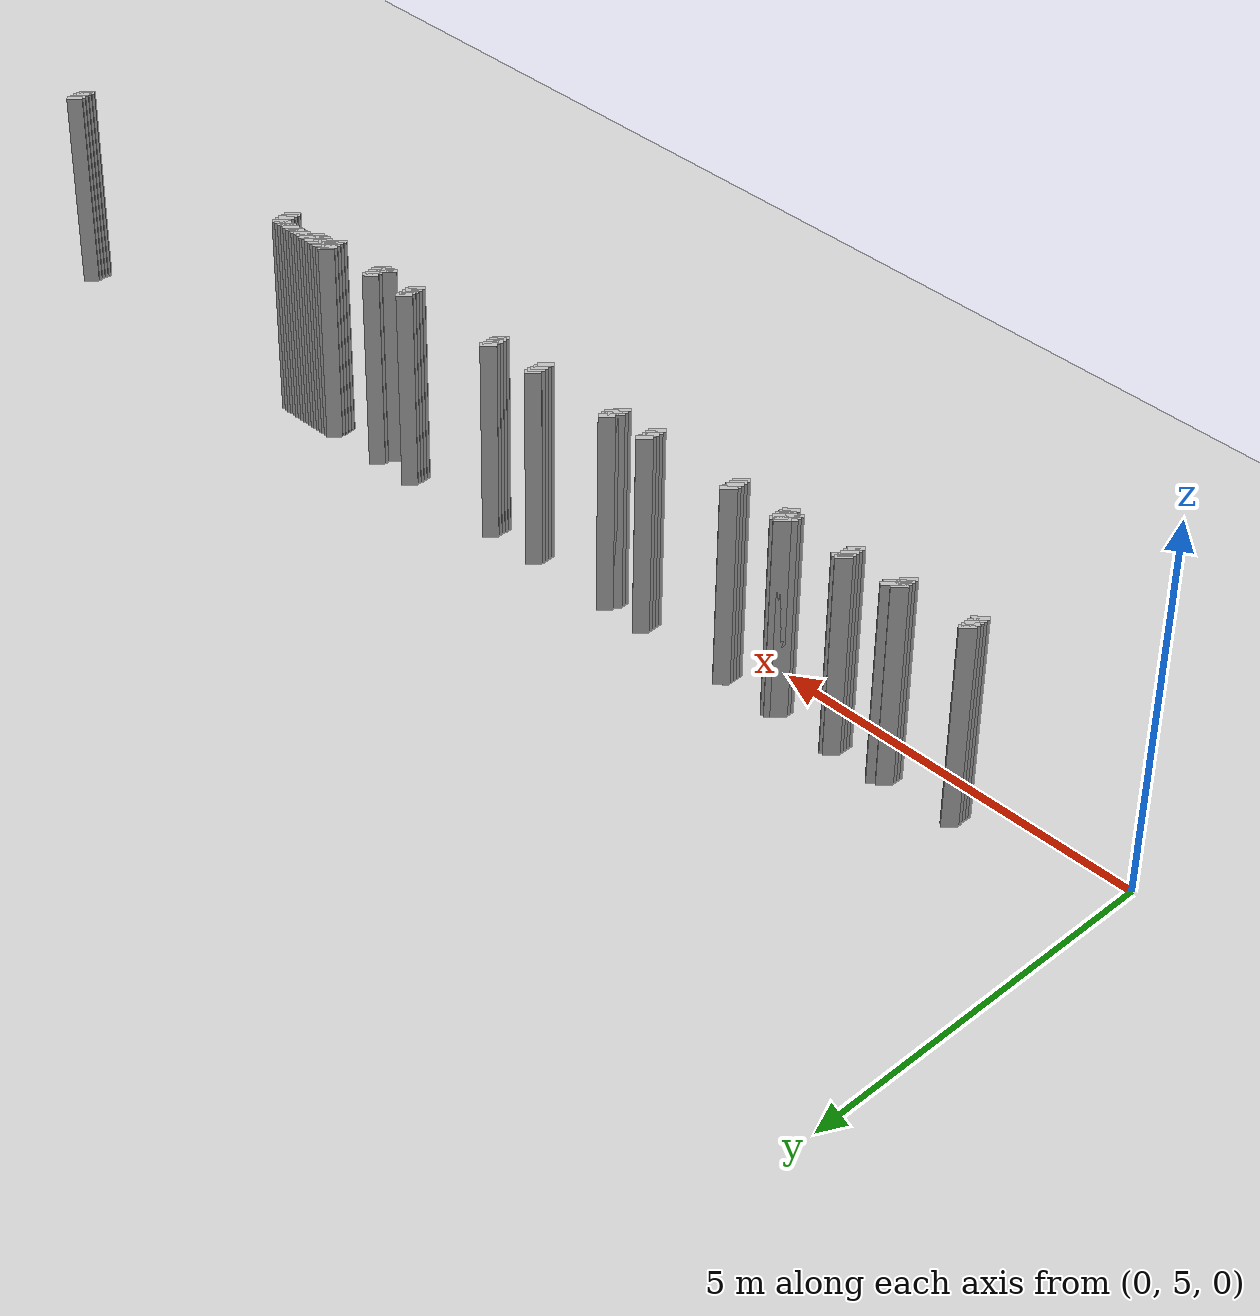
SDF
<sdf version="1.5">
 <world name="default">
  <include><uri>model://ground_plane</uri></include>
  <include><uri>model://sun</uri></include>
  <model name="grey_wall_2757">
   <static>1</static>
   <link name="link">
    <pose>3.1 5.65  1.4 0 0 -0.7853981633974572</pose>
    <collision name="collision">
     <geometry><box><size>0.07071067811865513 .2  2.8</size></box></geometry>
    </collision>
    <visual name="visual">
     <cast_shadows>0</cast_shadows>
     <geometry><box><size>0.07071067811865513 .2  2.8</size></box></geometry>
    </visual>
   </link>
  </model>
  <model name="grey_wall_2758">
   <static>1</static>
   <link name="link">
    <pose>3.75 5.65  1.4 0 0 -0.7853981633974572</pose>
    <collision name="collision">
     <geometry><box><size>0.07071067811865513 .2  2.8</size></box></geometry>
    </collision>
    <visual name="visual">
     <cast_shadows>0</cast_shadows>
     <geometry><box><size>0.07071067811865513 .2  2.8</size></box></geometry>
    </visual>
   </link>
  </model>
  <model name="grey_wall_2759">
   <static>1</static>
   <link name="link">
    <pose>3.8000000000000003 5.65  1.4 0 0 -0.7853981633974572</pose>
    <collision name="collision">
     <geometry><box><size>0.07071067811865513 .2  2.8</size></box></geometry>
    </collision>
    <visual name="visual">
     <cast_shadows>0</cast_shadows>
     <geometry><box><size>0.07071067811865513 .2  2.8</size></box></geometry>
    </visual>
   </link>
  </model>
  <model name="grey_wall_2760">
   <static>1</static>
   <link name="link">
    <pose>4.65 5.65  1.4 0 0 -0.7853981633974483</pose>
    <collision name="collision">
     <geometry><box><size>0.07071067811865576 .2  2.8</size></box></geometry>
    </collision>
    <visual name="visual">
     <cast_shadows>0</cast_shadows>
     <geometry><box><size>0.07071067811865576 .2  2.8</size></box></geometry>
    </visual>
   </link>
  </model>
  <model name="grey_wall_2761">
   <static>1</static>
   <link name="link">
    <pose>4.7 5.65  1.4 0 0 -0.7853981633974483</pose>
    <collision name="collision">
     <geometry><box><size>0.07071067811865576 .2  2.8</size></box></geometry>
    </collision>
    <visual name="visual">
     <cast_shadows>0</cast_shadows>
     <geometry><box><size>0.07071067811865576 .2  2.8</size></box></geometry>
    </visual>
   </link>
  </model>
  <model name="grey_wall_2762">
   <static>1</static>
   <link name="link">
    <pose>5.45 5.65  1.4 0 0 -0.7853981633974483</pose>
    <collision name="collision">
     <geometry><box><size>0.07071067811865576 .2  2.8</size></box></geometry>
    </collision>
    <visual name="visual">
     <cast_shadows>0</cast_shadows>
     <geometry><box><size>0.07071067811865576 .2  2.8</size></box></geometry>
    </visual>
   </link>
  </model>
  <model name="grey_wall_2763">
   <static>1</static>
   <link name="link">
    <pose>6.75 5.65  1.4 0 0 -0.7853981633974483</pose>
    <collision name="collision">
     <geometry><box><size>0.07071067811865576 .2  2.8</size></box></geometry>
    </collision>
    <visual name="visual">
     <cast_shadows>0</cast_shadows>
     <geometry><box><size>0.07071067811865576 .2  2.8</size></box></geometry>
    </visual>
   </link>
  </model>
  <model name="grey_wall_2764">
   <static>1</static>
   <link name="link">
    <pose>7.3500000000000005 5.65  1.4 0 0 -0.7853981633974483</pose>
    <collision name="collision">
     <geometry><box><size>0.07071067811865576 .2  2.8</size></box></geometry>
    </collision>
    <visual name="visual">
     <cast_shadows>0</cast_shadows>
     <geometry><box><size>0.07071067811865576 .2  2.8</size></box></geometry>
    </visual>
   </link>
  </model>
  <model name="grey_wall_2765">
   <static>1</static>
   <link name="link">
    <pose>8.55 5.65  1.4 0 0 -0.7853981633974483</pose>
    <collision name="collision">
     <geometry><box><size>0.07071067811865576 .2  2.8</size></box></geometry>
    </collision>
    <visual name="visual">
     <cast_shadows>0</cast_shadows>
     <geometry><box><size>0.07071067811865576 .2  2.8</size></box></geometry>
    </visual>
   </link>
  </model>
  <model name="grey_wall_2766">
   <static>1</static>
   <link name="link">
    <pose>9.3 5.65  1.4 0 0 -0.7853981633974483</pose>
    <collision name="collision">
     <geometry><box><size>0.07071067811865576 .2  2.8</size></box></geometry>
    </collision>
    <visual name="visual">
     <cast_shadows>0</cast_shadows>
     <geometry><box><size>0.07071067811865576 .2  2.8</size></box></geometry>
    </visual>
   </link>
  </model>
  <model name="grey_wall_2767">
   <static>1</static>
   <link name="link">
    <pose>10.75 5.65  1.4 0 0 -0.7853981633974483</pose>
    <collision name="collision">
     <geometry><box><size>0.07071067811865576 .2  2.8</size></box></geometry>
    </collision>
    <visual name="visual">
     <cast_shadows>0</cast_shadows>
     <geometry><box><size>0.07071067811865576 .2  2.8</size></box></geometry>
    </visual>
   </link>
  </model>
  <model name="grey_wall_2768">
   <static>1</static>
   <link name="link">
    <pose>11.350000000000001 5.65  1.4 0 0 -0.7853981633974483</pose>
    <collision name="collision">
     <geometry><box><size>0.07071067811865576 .2  2.8</size></box></geometry>
    </collision>
    <visual name="visual">
     <cast_shadows>0</cast_shadows>
     <geometry><box><size>0.07071067811865576 .2  2.8</size></box></geometry>
    </visual>
   </link>
  </model>
  <model name="grey_wall_2769">
   <static>1</static>
   <link name="link">
    <pose>12.15 5.65  1.4 0 0 -0.7853981633974483</pose>
    <collision name="collision">
     <geometry><box><size>0.07071067811865576 .2  2.8</size></box></geometry>
    </collision>
    <visual name="visual">
     <cast_shadows>0</cast_shadows>
     <geometry><box><size>0.07071067811865576 .2  2.8</size></box></geometry>
    </visual>
   </link>
  </model>
  <model name="grey_wall_2770">
   <static>1</static>
   <link name="link">
    <pose>12.200000000000001 5.65  1.4 0 0 -0.7853981633974483</pose>
    <collision name="collision">
     <geometry><box><size>0.07071067811865576 .2  2.8</size></box></geometry>
    </collision>
    <visual name="visual">
     <cast_shadows>0</cast_shadows>
     <geometry><box><size>0.07071067811865576 .2  2.8</size></box></geometry>
    </visual>
   </link>
  </model>
  <model name="grey_wall_2771">
   <static>1</static>
   <link name="link">
    <pose>12.25 5.65  1.4 0 0 -0.7853981633974483</pose>
    <collision name="collision">
     <geometry><box><size>0.07071067811865576 .2  2.8</size></box></geometry>
    </collision>
    <visual name="visual">
     <cast_shadows>0</cast_shadows>
     <geometry><box><size>0.07071067811865576 .2  2.8</size></box></geometry>
    </visual>
   </link>
  </model>
  <model name="grey_wall_2772">
   <static>1</static>
   <link name="link">
    <pose>12.3 5.65  1.4 0 0 -0.7853981633974483</pose>
    <collision name="collision">
     <geometry><box><size>0.07071067811865576 .2  2.8</size></box></geometry>
    </collision>
    <visual name="visual">
     <cast_shadows>0</cast_shadows>
     <geometry><box><size>0.07071067811865576 .2  2.8</size></box></geometry>
    </visual>
   </link>
  </model>
  <model name="grey_wall_2773">
   <static>1</static>
   <link name="link">
    <pose>12.350000000000001 5.65  1.4 0 0 -0.7853981633974483</pose>
    <collision name="collision">
     <geometry><box><size>0.07071067811865576 .2  2.8</size></box></geometry>
    </collision>
    <visual name="visual">
     <cast_shadows>0</cast_shadows>
     <geometry><box><size>0.07071067811865576 .2  2.8</size></box></geometry>
    </visual>
   </link>
  </model>
  <model name="grey_wall_2774">
   <static>1</static>
   <link name="link">
    <pose>12.4 5.65  1.4 0 0 -0.7853981633974483</pose>
    <collision name="collision">
     <geometry><box><size>0.07071067811865576 .2  2.8</size></box></geometry>
    </collision>
    <visual name="visual">
     <cast_shadows>0</cast_shadows>
     <geometry><box><size>0.07071067811865576 .2  2.8</size></box></geometry>
    </visual>
   </link>
  </model>
  <model name="grey_wall_2775">
   <static>1</static>
   <link name="link">
    <pose>12.450000000000001 5.65  1.4 0 0 -0.7853981633974483</pose>
    <collision name="collision">
     <geometry><box><size>0.07071067811865576 .2  2.8</size></box></geometry>
    </collision>
    <visual name="visual">
     <cast_shadows>0</cast_shadows>
     <geometry><box><size>0.07071067811865576 .2  2.8</size></box></geometry>
    </visual>
   </link>
  </model>
  <model name="grey_wall_2776">
   <static>1</static>
   <link name="link">
    <pose>12.5 5.65  1.4 0 0 -0.7853981633974483</pose>
    <collision name="collision">
     <geometry><box><size>0.07071067811865576 .2  2.8</size></box></geometry>
    </collision>
    <visual name="visual">
     <cast_shadows>0</cast_shadows>
     <geometry><box><size>0.07071067811865576 .2  2.8</size></box></geometry>
    </visual>
   </link>
  </model>
  <model name="grey_wall_2777">
   <static>1</static>
   <link name="link">
    <pose>12.55 5.65  1.4 0 0 -0.7853981633974483</pose>
    <collision name="collision">
     <geometry><box><size>0.07071067811865576 .2  2.8</size></box></geometry>
    </collision>
    <visual name="visual">
     <cast_shadows>0</cast_shadows>
     <geometry><box><size>0.07071067811865576 .2  2.8</size></box></geometry>
    </visual>
   </link>
  </model>
  <model name="grey_wall_2778">
   <static>1</static>
   <link name="link">
    <pose>12.600000000000001 5.65  1.4 0 0 -0.7853981633974483</pose>
    <collision name="collision">
     <geometry><box><size>0.07071067811865576 .2  2.8</size></box></geometry>
    </collision>
    <visual name="visual">
     <cast_shadows>0</cast_shadows>
     <geometry><box><size>0.07071067811865576 .2  2.8</size></box></geometry>
    </visual>
   </link>
  </model>
  <model name="grey_wall_2779">
   <static>1</static>
   <link name="link">
    <pose>12.65 5.65  1.4 0 0 -0.7853981633974483</pose>
    <collision name="collision">
     <geometry><box><size>0.07071067811865576 .2  2.8</size></box></geometry>
    </collision>
    <visual name="visual">
     <cast_shadows>0</cast_shadows>
     <geometry><box><size>0.07071067811865576 .2  2.8</size></box></geometry>
    </visual>
   </link>
  </model>
  <model name="grey_wall_2780">
   <static>1</static>
   <link name="link">
    <pose>12.700000000000001 5.65  1.4 0 0 -0.7853981633974483</pose>
    <collision name="collision">
     <geometry><box><size>0.07071067811865576 .2  2.8</size></box></geometry>
    </collision>
    <visual name="visual">
     <cast_shadows>0</cast_shadows>
     <geometry><box><size>0.07071067811865576 .2  2.8</size></box></geometry>
    </visual>
   </link>
  </model>
  <model name="grey_wall_2781">
   <static>1</static>
   <link name="link">
    <pose>12.75 5.65  1.4 0 0 -0.7853981633974483</pose>
    <collision name="collision">
     <geometry><box><size>0.07071067811865576 .2  2.8</size></box></geometry>
    </collision>
    <visual name="visual">
     <cast_shadows>0</cast_shadows>
     <geometry><box><size>0.07071067811865576 .2  2.8</size></box></geometry>
    </visual>
   </link>
  </model>
  <model name="grey_wall_2782">
   <static>1</static>
   <link name="link">
    <pose>12.8 5.65  1.4 0 0 -0.7853981633974483</pose>
    <collision name="collision">
     <geometry><box><size>0.07071067811865576 .2  2.8</size></box></geometry>
    </collision>
    <visual name="visual">
     <cast_shadows>0</cast_shadows>
     <geometry><box><size>0.07071067811865576 .2  2.8</size></box></geometry>
    </visual>
   </link>
  </model>
  <model name="grey_wall_2783">
   <static>1</static>
   <link name="link">
    <pose>12.850000000000001 5.65  1.4 0 0 -0.7853981633974483</pose>
    <collision name="collision">
     <geometry><box><size>0.07071067811865576 .2  2.8</size></box></geometry>
    </collision>
    <visual name="visual">
     <cast_shadows>0</cast_shadows>
     <geometry><box><size>0.07071067811865576 .2  2.8</size></box></geometry>
    </visual>
   </link>
  </model>
  <model name="grey_wall_2784">
   <static>1</static>
   <link name="link">
    <pose>12.9 5.65  1.4 0 0 -0.7853981633974483</pose>
    <collision name="collision">
     <geometry><box><size>0.07071067811865576 .2  2.8</size></box></geometry>
    </collision>
    <visual name="visual">
     <cast_shadows>0</cast_shadows>
     <geometry><box><size>0.07071067811865576 .2  2.8</size></box></geometry>
    </visual>
   </link>
  </model>
  <model name="grey_wall_2785">
   <static>1</static>
   <link name="link">
    <pose>12.950000000000001 5.65  1.4 0 0 -0.7853981633974483</pose>
    <collision name="collision">
     <geometry><box><size>0.07071067811865576 .2  2.8</size></box></geometry>
    </collision>
    <visual name="visual">
     <cast_shadows>0</cast_shadows>
     <geometry><box><size>0.07071067811865576 .2  2.8</size></box></geometry>
    </visual>
   </link>
  </model>
  <model name="grey_wall_2786">
   <static>1</static>
   <link name="link">
    <pose>13.0 5.65  1.4 0 0 -0.7853981633974483</pose>
    <collision name="collision">
     <geometry><box><size>0.07071067811865576 .2  2.8</size></box></geometry>
    </collision>
    <visual name="visual">
     <cast_shadows>0</cast_shadows>
     <geometry><box><size>0.07071067811865576 .2  2.8</size></box></geometry>
    </visual>
   </link>
  </model>
  <model name="grey_wall_2787">
   <static>1</static>
   <link name="link">
    <pose>17.05 5.65  1.4 0 0 -0.7853981633974838</pose>
    <collision name="collision">
     <geometry><box><size>0.07071067811865325 .2  2.8</size></box></geometry>
    </collision>
    <visual name="visual">
     <cast_shadows>0</cast_shadows>
     <geometry><box><size>0.07071067811865325 .2  2.8</size></box></geometry>
    </visual>
   </link>
  </model>
  <model name="grey_wall_2788">
   <static>1</static>
   <link name="link">
    <pose>2.0500000000000003 5.6000000000000005  1.4 0 0 -0.7853981633974572</pose>
    <collision name="collision">
     <geometry><box><size>0.07071067811865513 .2  2.8</size></box></geometry>
    </collision>
    <visual name="visual">
     <cast_shadows>0</cast_shadows>
     <geometry><box><size>0.07071067811865513 .2  2.8</size></box></geometry>
    </visual>
   </link>
  </model>
  <model name="grey_wall_2789">
   <static>1</static>
   <link name="link">
    <pose>3.0 5.6000000000000005  1.4 0 0 -0.7853981633974572</pose>
    <collision name="collision">
     <geometry><box><size>0.07071067811865513 .2  2.8</size></box></geometry>
    </collision>
    <visual name="visual">
     <cast_shadows>0</cast_shadows>
     <geometry><box><size>0.07071067811865513 .2  2.8</size></box></geometry>
    </visual>
   </link>
  </model>
  <model name="grey_wall_2790">
   <static>1</static>
   <link name="link">
    <pose>3.0500000000000003 5.6000000000000005  1.4 0 0 -0.7853981633974572</pose>
    <collision name="collision">
     <geometry><box><size>0.07071067811865513 .2  2.8</size></box></geometry>
    </collision>
    <visual name="visual">
     <cast_shadows>0</cast_shadows>
     <geometry><box><size>0.07071067811865513 .2  2.8</size></box></geometry>
    </visual>
   </link>
  </model>
  <model name="grey_wall_2791">
   <static>1</static>
   <link name="link">
    <pose>3.1 5.6000000000000005  1.4 0 0 -0.7853981633974572</pose>
    <collision name="collision">
     <geometry><box><size>0.07071067811865513 .2  2.8</size></box></geometry>
    </collision>
    <visual name="visual">
     <cast_shadows>0</cast_shadows>
     <geometry><box><size>0.07071067811865513 .2  2.8</size></box></geometry>
    </visual>
   </link>
  </model>
  <model name="grey_wall_2792">
   <static>1</static>
   <link name="link">
    <pose>3.75 5.6000000000000005  1.4 0 0 -0.7853981633974572</pose>
    <collision name="collision">
     <geometry><box><size>0.07071067811865513 .2  2.8</size></box></geometry>
    </collision>
    <visual name="visual">
     <cast_shadows>0</cast_shadows>
     <geometry><box><size>0.07071067811865513 .2  2.8</size></box></geometry>
    </visual>
   </link>
  </model>
  <model name="grey_wall_2793">
   <static>1</static>
   <link name="link">
    <pose>4.6000000000000005 5.6000000000000005  1.4 0 0 -0.7853981633974483</pose>
    <collision name="collision">
     <geometry><box><size>0.07071067811865576 .2  2.8</size></box></geometry>
    </collision>
    <visual name="visual">
     <cast_shadows>0</cast_shadows>
     <geometry><box><size>0.07071067811865576 .2  2.8</size></box></geometry>
    </visual>
   </link>
  </model>
  <model name="grey_wall_2794">
   <static>1</static>
   <link name="link">
    <pose>4.7 5.6000000000000005  1.4 0 0 -0.7853981633974483</pose>
    <collision name="collision">
     <geometry><box><size>0.07071067811865576 .2  2.8</size></box></geometry>
    </collision>
    <visual name="visual">
     <cast_shadows>0</cast_shadows>
     <geometry><box><size>0.07071067811865576 .2  2.8</size></box></geometry>
    </visual>
   </link>
  </model>
  <model name="grey_wall_2795">
   <static>1</static>
   <link name="link">
    <pose>5.45 5.6000000000000005  1.4 0 0 -0.7853981633974483</pose>
    <collision name="collision">
     <geometry><box><size>0.07071067811865576 .2  2.8</size></box></geometry>
    </collision>
    <visual name="visual">
     <cast_shadows>0</cast_shadows>
     <geometry><box><size>0.07071067811865576 .2  2.8</size></box></geometry>
    </visual>
   </link>
  </model>
  <model name="grey_wall_2796">
   <static>1</static>
   <link name="link">
    <pose>6.75 5.6000000000000005  1.4 0 0 -0.7853981633974483</pose>
    <collision name="collision">
     <geometry><box><size>0.07071067811865576 .2  2.8</size></box></geometry>
    </collision>
    <visual name="visual">
     <cast_shadows>0</cast_shadows>
     <geometry><box><size>0.07071067811865576 .2  2.8</size></box></geometry>
    </visual>
   </link>
  </model>
  <model name="grey_wall_2797">
   <static>1</static>
   <link name="link">
    <pose>7.3500000000000005 5.6000000000000005  1.4 0 0 -0.7853981633974483</pose>
    <collision name="collision">
     <geometry><box><size>0.07071067811865576 .2  2.8</size></box></geometry>
    </collision>
    <visual name="visual">
     <cast_shadows>0</cast_shadows>
     <geometry><box><size>0.07071067811865576 .2  2.8</size></box></geometry>
    </visual>
   </link>
  </model>
  <model name="grey_wall_2798">
   <static>1</static>
   <link name="link">
    <pose>8.55 5.6000000000000005  1.4 0 0 -0.7853981633974483</pose>
    <collision name="collision">
     <geometry><box><size>0.07071067811865576 .2  2.8</size></box></geometry>
    </collision>
    <visual name="visual">
     <cast_shadows>0</cast_shadows>
     <geometry><box><size>0.07071067811865576 .2  2.8</size></box></geometry>
    </visual>
   </link>
  </model>
  <model name="grey_wall_2799">
   <static>1</static>
   <link name="link">
    <pose>9.3 5.6000000000000005  1.4 0 0 -0.7853981633974483</pose>
    <collision name="collision">
     <geometry><box><size>0.07071067811865576 .2  2.8</size></box></geometry>
    </collision>
    <visual name="visual">
     <cast_shadows>0</cast_shadows>
     <geometry><box><size>0.07071067811865576 .2  2.8</size></box></geometry>
    </visual>
   </link>
  </model>
  <model name="grey_wall_2800">
   <static>1</static>
   <link name="link">
    <pose>10.75 5.6000000000000005  1.4 0 0 -0.7853981633974483</pose>
    <collision name="collision">
     <geometry><box><size>0.07071067811865576 .2  2.8</size></box></geometry>
    </collision>
    <visual name="visual">
     <cast_shadows>0</cast_shadows>
     <geometry><box><size>0.07071067811865576 .2  2.8</size></box></geometry>
    </visual>
   </link>
  </model>
  <model name="grey_wall_2801">
   <static>1</static>
   <link name="link">
    <pose>11.350000000000001 5.6000000000000005  1.4 0 0 -0.7853981633974483</pose>
    <collision name="collision">
     <geometry><box><size>0.07071067811865576 .2  2.8</size></box></geometry>
    </collision>
    <visual name="visual">
     <cast_shadows>0</cast_shadows>
     <geometry><box><size>0.07071067811865576 .2  2.8</size></box></geometry>
    </visual>
   </link>
  </model>
  <model name="grey_wall_2802">
   <static>1</static>
   <link name="link">
    <pose>12.15 5.6000000000000005  1.4 0 0 -0.7853981633974483</pose>
    <collision name="collision">
     <geometry><box><size>0.07071067811865576 .2  2.8</size></box></geometry>
    </collision>
    <visual name="visual">
     <cast_shadows>0</cast_shadows>
     <geometry><box><size>0.07071067811865576 .2  2.8</size></box></geometry>
    </visual>
   </link>
  </model>
  <model name="grey_wall_2803">
   <static>1</static>
   <link name="link">
    <pose>12.200000000000001 5.6000000000000005  1.4 0 0 -0.7853981633974483</pose>
    <collision name="collision">
     <geometry><box><size>0.07071067811865576 .2  2.8</size></box></geometry>
    </collision>
    <visual name="visual">
     <cast_shadows>0</cast_shadows>
     <geometry><box><size>0.07071067811865576 .2  2.8</size></box></geometry>
    </visual>
   </link>
  </model>
  <model name="grey_wall_2804">
   <static>1</static>
   <link name="link">
    <pose>12.3 5.6000000000000005  1.4 0 0 -0.7853981633974483</pose>
    <collision name="collision">
     <geometry><box><size>0.07071067811865576 .2  2.8</size></box></geometry>
    </collision>
    <visual name="visual">
     <cast_shadows>0</cast_shadows>
     <geometry><box><size>0.07071067811865576 .2  2.8</size></box></geometry>
    </visual>
   </link>
  </model>
  <model name="grey_wall_2805">
   <static>1</static>
   <link name="link">
    <pose>12.350000000000001 5.6000000000000005  1.4 0 0 -0.7853981633974483</pose>
    <collision name="collision">
     <geometry><box><size>0.07071067811865576 .2  2.8</size></box></geometry>
    </collision>
    <visual name="visual">
     <cast_shadows>0</cast_shadows>
     <geometry><box><size>0.07071067811865576 .2  2.8</size></box></geometry>
    </visual>
   </link>
  </model>
  <model name="grey_wall_2806">
   <static>1</static>
   <link name="link">
    <pose>12.450000000000001 5.6000000000000005  1.4 0 0 -0.7853981633974483</pose>
    <collision name="collision">
     <geometry><box><size>0.07071067811865576 .2  2.8</size></box></geometry>
    </collision>
    <visual name="visual">
     <cast_shadows>0</cast_shadows>
     <geometry><box><size>0.07071067811865576 .2  2.8</size></box></geometry>
    </visual>
   </link>
  </model>
  <model name="grey_wall_2807">
   <static>1</static>
   <link name="link">
    <pose>13.0 5.6000000000000005  1.4 0 0 -0.7853981633974483</pose>
    <collision name="collision">
     <geometry><box><size>0.07071067811865576 .2  2.8</size></box></geometry>
    </collision>
    <visual name="visual">
     <cast_shadows>0</cast_shadows>
     <geometry><box><size>0.07071067811865576 .2  2.8</size></box></geometry>
    </visual>
   </link>
  </model>
  <model name="grey_wall_2808">
   <static>1</static>
   <link name="link">
    <pose>17.05 5.6000000000000005  1.4 0 0 -0.7853981633974838</pose>
    <collision name="collision">
     <geometry><box><size>0.07071067811865325 .2  2.8</size></box></geometry>
    </collision>
    <visual name="visual">
     <cast_shadows>0</cast_shadows>
     <geometry><box><size>0.07071067811865325 .2  2.8</size></box></geometry>
    </visual>
   </link>
  </model>
  <model name="grey_wall_2809">
   <static>1</static>
   <link name="link">
    <pose>2.0500000000000003 5.550000000000001  1.4 0 0 -0.7853981633974572</pose>
    <collision name="collision">
     <geometry><box><size>0.07071067811865513 .2  2.8</size></box></geometry>
    </collision>
    <visual name="visual">
     <cast_shadows>0</cast_shadows>
     <geometry><box><size>0.07071067811865513 .2  2.8</size></box></geometry>
    </visual>
   </link>
  </model>
  <model name="grey_wall_2810">
   <static>1</static>
   <link name="link">
    <pose>3.0 5.550000000000001  1.4 0 0 -0.7853981633974572</pose>
    <collision name="collision">
     <geometry><box><size>0.07071067811865513 .2  2.8</size></box></geometry>
    </collision>
    <visual name="visual">
     <cast_shadows>0</cast_shadows>
     <geometry><box><size>0.07071067811865513 .2  2.8</size></box></geometry>
    </visual>
   </link>
  </model>
  <model name="grey_wall_2811">
   <static>1</static>
   <link name="link">
    <pose>3.75 5.550000000000001  1.4 0 0 -0.7853981633974572</pose>
    <collision name="collision">
     <geometry><box><size>0.07071067811865513 .2  2.8</size></box></geometry>
    </collision>
    <visual name="visual">
     <cast_shadows>0</cast_shadows>
     <geometry><box><size>0.07071067811865513 .2  2.8</size></box></geometry>
    </visual>
   </link>
  </model>
  <model name="grey_wall_2812">
   <static>1</static>
   <link name="link">
    <pose>4.6000000000000005 5.550000000000001  1.4 0 0 -0.7853981633974483</pose>
    <collision name="collision">
     <geometry><box><size>0.07071067811865576 .2  2.8</size></box></geometry>
    </collision>
    <visual name="visual">
     <cast_shadows>0</cast_shadows>
     <geometry><box><size>0.07071067811865576 .2  2.8</size></box></geometry>
    </visual>
   </link>
  </model>
  <model name="grey_wall_2813">
   <static>1</static>
   <link name="link">
    <pose>4.7 5.550000000000001  1.4 0 0 -0.7853981633974483</pose>
    <collision name="collision">
     <geometry><box><size>0.07071067811865576 .2  2.8</size></box></geometry>
    </collision>
    <visual name="visual">
     <cast_shadows>0</cast_shadows>
     <geometry><box><size>0.07071067811865576 .2  2.8</size></box></geometry>
    </visual>
   </link>
  </model>
  <model name="grey_wall_2814">
   <static>1</static>
   <link name="link">
    <pose>5.45 5.550000000000001  1.4 0 0 -0.7853981633974483</pose>
    <collision name="collision">
     <geometry><box><size>0.07071067811865576 .2  2.8</size></box></geometry>
    </collision>
    <visual name="visual">
     <cast_shadows>0</cast_shadows>
     <geometry><box><size>0.07071067811865576 .2  2.8</size></box></geometry>
    </visual>
   </link>
  </model>
  <model name="grey_wall_2815">
   <static>1</static>
   <link name="link">
    <pose>6.75 5.550000000000001  1.4 0 0 -0.7853981633974483</pose>
    <collision name="collision">
     <geometry><box><size>0.07071067811865576 .2  2.8</size></box></geometry>
    </collision>
    <visual name="visual">
     <cast_shadows>0</cast_shadows>
     <geometry><box><size>0.07071067811865576 .2  2.8</size></box></geometry>
    </visual>
   </link>
  </model>
  <model name="grey_wall_2816">
   <static>1</static>
   <link name="link">
    <pose>7.300000000000001 5.550000000000001  1.4 0 0 -0.7853981633974483</pose>
    <collision name="collision">
     <geometry><box><size>0.07071067811865576 .2  2.8</size></box></geometry>
    </collision>
    <visual name="visual">
     <cast_shadows>0</cast_shadows>
     <geometry><box><size>0.07071067811865576 .2  2.8</size></box></geometry>
    </visual>
   </link>
  </model>
  <model name="grey_wall_2817">
   <static>1</static>
   <link name="link">
    <pose>7.3500000000000005 5.550000000000001  1.4 0 0 -0.7853981633974483</pose>
    <collision name="collision">
     <geometry><box><size>0.07071067811865576 .2  2.8</size></box></geometry>
    </collision>
    <visual name="visual">
     <cast_shadows>0</cast_shadows>
     <geometry><box><size>0.07071067811865576 .2  2.8</size></box></geometry>
    </visual>
   </link>
  </model>
  <model name="grey_wall_2818">
   <static>1</static>
   <link name="link">
    <pose>8.55 5.550000000000001  1.4 0 0 -0.7853981633974483</pose>
    <collision name="collision">
     <geometry><box><size>0.07071067811865576 .2  2.8</size></box></geometry>
    </collision>
    <visual name="visual">
     <cast_shadows>0</cast_shadows>
     <geometry><box><size>0.07071067811865576 .2  2.8</size></box></geometry>
    </visual>
   </link>
  </model>
  <model name="grey_wall_2819">
   <static>1</static>
   <link name="link">
    <pose>9.3 5.550000000000001  1.4 0 0 -0.7853981633974483</pose>
    <collision name="collision">
     <geometry><box><size>0.07071067811865576 .2  2.8</size></box></geometry>
    </collision>
    <visual name="visual">
     <cast_shadows>0</cast_shadows>
     <geometry><box><size>0.07071067811865576 .2  2.8</size></box></geometry>
    </visual>
   </link>
  </model>
  <model name="grey_wall_2820">
   <static>1</static>
   <link name="link">
    <pose>10.75 5.550000000000001  1.4 0 0 -0.7853981633974483</pose>
    <collision name="collision">
     <geometry><box><size>0.07071067811865576 .2  2.8</size></box></geometry>
    </collision>
    <visual name="visual">
     <cast_shadows>0</cast_shadows>
     <geometry><box><size>0.07071067811865576 .2  2.8</size></box></geometry>
    </visual>
   </link>
  </model>
  <model name="grey_wall_2821">
   <static>1</static>
   <link name="link">
    <pose>11.350000000000001 5.550000000000001  1.4 0 0 -0.7853981633974483</pose>
    <collision name="collision">
     <geometry><box><size>0.07071067811865576 .2  2.8</size></box></geometry>
    </collision>
    <visual name="visual">
     <cast_shadows>0</cast_shadows>
     <geometry><box><size>0.07071067811865576 .2  2.8</size></box></geometry>
    </visual>
   </link>
  </model>
  <model name="grey_wall_2822">
   <static>1</static>
   <link name="link">
    <pose>12.15 5.550000000000001  1.4 0 0 -0.7853981633974483</pose>
    <collision name="collision">
     <geometry><box><size>0.07071067811865576 .2  2.8</size></box></geometry>
    </collision>
    <visual name="visual">
     <cast_shadows>0</cast_shadows>
     <geometry><box><size>0.07071067811865576 .2  2.8</size></box></geometry>
    </visual>
   </link>
  </model>
  <model name="grey_wall_2823">
   <static>1</static>
   <link name="link">
    <pose>12.200000000000001 5.550000000000001  1.4 0 0 -0.7853981633974483</pose>
    <collision name="collision">
     <geometry><box><size>0.07071067811865576 .2  2.8</size></box></geometry>
    </collision>
    <visual name="visual">
     <cast_shadows>0</cast_shadows>
     <geometry><box><size>0.07071067811865576 .2  2.8</size></box></geometry>
    </visual>
   </link>
  </model>
  <model name="grey_wall_2824">
   <static>1</static>
   <link name="link">
    <pose>12.25 5.550000000000001  1.4 0 0 -0.7853981633974483</pose>
    <collision name="collision">
     <geometry><box><size>0.07071067811865576 .2  2.8</size></box></geometry>
    </collision>
    <visual name="visual">
     <cast_shadows>0</cast_shadows>
     <geometry><box><size>0.07071067811865576 .2  2.8</size></box></geometry>
    </visual>
   </link>
  </model>
  <model name="grey_wall_2825">
   <static>1</static>
   <link name="link">
    <pose>12.3 5.550000000000001  1.4 0 0 -0.7853981633974483</pose>
    <collision name="collision">
     <geometry><box><size>0.07071067811865576 .2  2.8</size></box></geometry>
    </collision>
    <visual name="visual">
     <cast_shadows>0</cast_shadows>
     <geometry><box><size>0.07071067811865576 .2  2.8</size></box></geometry>
    </visual>
   </link>
  </model>
  <model name="grey_wall_2826">
   <static>1</static>
   <link name="link">
    <pose>12.350000000000001 5.550000000000001  1.4 0 0 -0.7853981633974483</pose>
    <collision name="collision">
     <geometry><box><size>0.07071067811865576 .2  2.8</size></box></geometry>
    </collision>
    <visual name="visual">
     <cast_shadows>0</cast_shadows>
     <geometry><box><size>0.07071067811865576 .2  2.8</size></box></geometry>
    </visual>
   </link>
  </model>
  <model name="grey_wall_2827">
   <static>1</static>
   <link name="link">
    <pose>12.4 5.550000000000001  1.4 0 0 -0.7853981633974483</pose>
    <collision name="collision">
     <geometry><box><size>0.07071067811865576 .2  2.8</size></box></geometry>
    </collision>
    <visual name="visual">
     <cast_shadows>0</cast_shadows>
     <geometry><box><size>0.07071067811865576 .2  2.8</size></box></geometry>
    </visual>
   </link>
  </model>
  <model name="grey_wall_2828">
   <static>1</static>
   <link name="link">
    <pose>12.450000000000001 5.550000000000001  1.4 0 0 -0.7853981633974483</pose>
    <collision name="collision">
     <geometry><box><size>0.07071067811865576 .2  2.8</size></box></geometry>
    </collision>
    <visual name="visual">
     <cast_shadows>0</cast_shadows>
     <geometry><box><size>0.07071067811865576 .2  2.8</size></box></geometry>
    </visual>
   </link>
  </model>
  <model name="grey_wall_2829">
   <static>1</static>
   <link name="link">
    <pose>13.0 5.550000000000001  1.4 0 0 -0.7853981633974483</pose>
    <collision name="collision">
     <geometry><box><size>0.07071067811865576 .2  2.8</size></box></geometry>
    </collision>
    <visual name="visual">
     <cast_shadows>0</cast_shadows>
     <geometry><box><size>0.07071067811865576 .2  2.8</size></box></geometry>
    </visual>
   </link>
  </model>
  <model name="grey_wall_2830">
   <static>1</static>
   <link name="link">
    <pose>17.05 5.550000000000001  1.4 0 0 -0.7853981633974838</pose>
    <collision name="collision">
     <geometry><box><size>0.07071067811865325 .2  2.8</size></box></geometry>
    </collision>
    <visual name="visual">
     <cast_shadows>0</cast_shadows>
     <geometry><box><size>0.07071067811865325 .2  2.8</size></box></geometry>
    </visual>
   </link>
  </model>
  <model name="grey_wall_2831">
   <static>1</static>
   <link name="link">
    <pose>2.0500000000000003 5.5  1.4 0 0 -0.7853981633974572</pose>
    <collision name="collision">
     <geometry><box><size>0.07071067811865513 .2  2.8</size></box></geometry>
    </collision>
    <visual name="visual">
     <cast_shadows>0</cast_shadows>
     <geometry><box><size>0.07071067811865513 .2  2.8</size></box></geometry>
    </visual>
   </link>
  </model>
  <model name="grey_wall_2832">
   <static>1</static>
   <link name="link">
    <pose>3.0 5.5  1.4 0 0 -0.7853981633974572</pose>
    <collision name="collision">
     <geometry><box><size>0.07071067811865513 .2  2.8</size></box></geometry>
    </collision>
    <visual name="visual">
     <cast_shadows>0</cast_shadows>
     <geometry><box><size>0.07071067811865513 .2  2.8</size></box></geometry>
    </visual>
   </link>
  </model>
  <model name="grey_wall_2833">
   <static>1</static>
   <link name="link">
    <pose>3.75 5.5  1.4 0 0 -0.7853981633974572</pose>
    <collision name="collision">
     <geometry><box><size>0.07071067811865513 .2  2.8</size></box></geometry>
    </collision>
    <visual name="visual">
     <cast_shadows>0</cast_shadows>
     <geometry><box><size>0.07071067811865513 .2  2.8</size></box></geometry>
    </visual>
   </link>
  </model>
  <model name="grey_wall_2834">
   <static>1</static>
   <link name="link">
    <pose>4.6000000000000005 5.5  1.4 0 0 -0.7853981633974483</pose>
    <collision name="collision">
     <geometry><box><size>0.07071067811865576 .2  2.8</size></box></geometry>
    </collision>
    <visual name="visual">
     <cast_shadows>0</cast_shadows>
     <geometry><box><size>0.07071067811865576 .2  2.8</size></box></geometry>
    </visual>
   </link>
  </model>
  <model name="grey_wall_2835">
   <static>1</static>
   <link name="link">
    <pose>4.7 5.5  1.4 0 0 -0.7853981633974483</pose>
    <collision name="collision">
     <geometry><box><size>0.07071067811865576 .2  2.8</size></box></geometry>
    </collision>
    <visual name="visual">
     <cast_shadows>0</cast_shadows>
     <geometry><box><size>0.07071067811865576 .2  2.8</size></box></geometry>
    </visual>
   </link>
  </model>
  <model name="grey_wall_2836">
   <static>1</static>
   <link name="link">
    <pose>5.45 5.5  1.4 0 0 -0.7853981633974483</pose>
    <collision name="collision">
     <geometry><box><size>0.07071067811865576 .2  2.8</size></box></geometry>
    </collision>
    <visual name="visual">
     <cast_shadows>0</cast_shadows>
     <geometry><box><size>0.07071067811865576 .2  2.8</size></box></geometry>
    </visual>
   </link>
  </model>
  <model name="grey_wall_2837">
   <static>1</static>
   <link name="link">
    <pose>6.75 5.5  1.4 0 0 -0.7853981633974483</pose>
    <collision name="collision">
     <geometry><box><size>0.07071067811865576 .2  2.8</size></box></geometry>
    </collision>
    <visual name="visual">
     <cast_shadows>0</cast_shadows>
     <geometry><box><size>0.07071067811865576 .2  2.8</size></box></geometry>
    </visual>
   </link>
  </model>
  <model name="grey_wall_2838">
   <static>1</static>
   <link name="link">
    <pose>7.300000000000001 5.5  1.4 0 0 -0.7853981633974483</pose>
    <collision name="collision">
     <geometry><box><size>0.07071067811865576 .2  2.8</size></box></geometry>
    </collision>
    <visual name="visual">
     <cast_shadows>0</cast_shadows>
     <geometry><box><size>0.07071067811865576 .2  2.8</size></box></geometry>
    </visual>
   </link>
  </model>
  <model name="grey_wall_2839">
   <static>1</static>
   <link name="link">
    <pose>8.55 5.5  1.4 0 0 -0.7853981633974483</pose>
    <collision name="collision">
     <geometry><box><size>0.07071067811865576 .2  2.8</size></box></geometry>
    </collision>
    <visual name="visual">
     <cast_shadows>0</cast_shadows>
     <geometry><box><size>0.07071067811865576 .2  2.8</size></box></geometry>
    </visual>
   </link>
  </model>
  <model name="grey_wall_2840">
   <static>1</static>
   <link name="link">
    <pose>9.3 5.5  1.4 0 0 -0.7853981633974483</pose>
    <collision name="collision">
     <geometry><box><size>0.07071067811865576 .2  2.8</size></box></geometry>
    </collision>
    <visual name="visual">
     <cast_shadows>0</cast_shadows>
     <geometry><box><size>0.07071067811865576 .2  2.8</size></box></geometry>
    </visual>
   </link>
  </model>
  <model name="grey_wall_2841">
   <static>1</static>
   <link name="link">
    <pose>10.75 5.5  1.4 0 0 -0.7853981633974483</pose>
    <collision name="collision">
     <geometry><box><size>0.07071067811865576 .2  2.8</size></box></geometry>
    </collision>
    <visual name="visual">
     <cast_shadows>0</cast_shadows>
     <geometry><box><size>0.07071067811865576 .2  2.8</size></box></geometry>
    </visual>
   </link>
  </model>
  <model name="grey_wall_2842">
   <static>1</static>
   <link name="link">
    <pose>11.350000000000001 5.5  1.4 0 0 -0.7853981633974483</pose>
    <collision name="collision">
     <geometry><box><size>0.07071067811865576 .2  2.8</size></box></geometry>
    </collision>
    <visual name="visual">
     <cast_shadows>0</cast_shadows>
     <geometry><box><size>0.07071067811865576 .2  2.8</size></box></geometry>
    </visual>
   </link>
  </model>
  <model name="grey_wall_2843">
   <static>1</static>
   <link name="link">
    <pose>12.15 5.5  1.4 0 0 -0.7853981633974483</pose>
    <collision name="collision">
     <geometry><box><size>0.07071067811865576 .2  2.8</size></box></geometry>
    </collision>
    <visual name="visual">
     <cast_shadows>0</cast_shadows>
     <geometry><box><size>0.07071067811865576 .2  2.8</size></box></geometry>
    </visual>
   </link>
  </model>
  <model name="grey_wall_2844">
   <static>1</static>
   <link name="link">
    <pose>13.0 5.5  1.4 0 0 -0.7853981633974483</pose>
    <collision name="collision">
     <geometry><box><size>0.07071067811865576 .2  2.8</size></box></geometry>
    </collision>
    <visual name="visual">
     <cast_shadows>0</cast_shadows>
     <geometry><box><size>0.07071067811865576 .2  2.8</size></box></geometry>
    </visual>
   </link>
  </model>
  <model name="grey_wall_2845">
   <static>1</static>
   <link name="link">
    <pose>17.05 5.5  1.4 0 0 -0.7853981633974838</pose>
    <collision name="collision">
     <geometry><box><size>0.07071067811865325 .2  2.8</size></box></geometry>
    </collision>
    <visual name="visual">
     <cast_shadows>0</cast_shadows>
     <geometry><box><size>0.07071067811865325 .2  2.8</size></box></geometry>
    </visual>
   </link>
  </model>
  <model name="grey_wall_2846">
   <static>1</static>
   <link name="link">
    <pose>2.0500000000000003 5.45  1.4 0 0 -0.7853981633974572</pose>
    <collision name="collision">
     <geometry><box><size>0.07071067811865513 .2  2.8</size></box></geometry>
    </collision>
    <visual name="visual">
     <cast_shadows>0</cast_shadows>
     <geometry><box><size>0.07071067811865513 .2  2.8</size></box></geometry>
    </visual>
   </link>
  </model>
  <model name="grey_wall_2847">
   <static>1</static>
   <link name="link">
    <pose>3.0 5.45  1.4 0 0 -0.7853981633974572</pose>
    <collision name="collision">
     <geometry><box><size>0.07071067811865513 .2  2.8</size></box></geometry>
    </collision>
    <visual name="visual">
     <cast_shadows>0</cast_shadows>
     <geometry><box><size>0.07071067811865513 .2  2.8</size></box></geometry>
    </visual>
   </link>
  </model>
  <model name="grey_wall_2848">
   <static>1</static>
   <link name="link">
    <pose>3.75 5.45  1.4 0 0 -0.7853981633974572</pose>
    <collision name="collision">
     <geometry><box><size>0.07071067811865513 .2  2.8</size></box></geometry>
    </collision>
    <visual name="visual">
     <cast_shadows>0</cast_shadows>
     <geometry><box><size>0.07071067811865513 .2  2.8</size></box></geometry>
    </visual>
   </link>
  </model>
  <model name="grey_wall_2849">
   <static>1</static>
   <link name="link">
    <pose>4.7 5.45  1.4 0 0 -0.7853981633974483</pose>
    <collision name="collision">
     <geometry><box><size>0.07071067811865576 .2  2.8</size></box></geometry>
    </collision>
    <visual name="visual">
     <cast_shadows>0</cast_shadows>
     <geometry><box><size>0.07071067811865576 .2  2.8</size></box></geometry>
    </visual>
   </link>
  </model>
  <model name="grey_wall_2850">
   <static>1</static>
   <link name="link">
    <pose>5.45 5.45  1.4 0 0 -0.7853981633974483</pose>
    <collision name="collision">
     <geometry><box><size>0.07071067811865576 .2  2.8</size></box></geometry>
    </collision>
    <visual name="visual">
     <cast_shadows>0</cast_shadows>
     <geometry><box><size>0.07071067811865576 .2  2.8</size></box></geometry>
    </visual>
   </link>
  </model>
  <model name="grey_wall_2851">
   <static>1</static>
   <link name="link">
    <pose>6.75 5.45  1.4 0 0 -0.7853981633974483</pose>
    <collision name="collision">
     <geometry><box><size>0.07071067811865576 .2  2.8</size></box></geometry>
    </collision>
    <visual name="visual">
     <cast_shadows>0</cast_shadows>
     <geometry><box><size>0.07071067811865576 .2  2.8</size></box></geometry>
    </visual>
   </link>
  </model>
  <model name="grey_wall_2852">
   <static>1</static>
   <link name="link">
    <pose>7.300000000000001 5.45  1.4 0 0 -0.7853981633974483</pose>
    <collision name="collision">
     <geometry><box><size>0.07071067811865576 .2  2.8</size></box></geometry>
    </collision>
    <visual name="visual">
     <cast_shadows>0</cast_shadows>
     <geometry><box><size>0.07071067811865576 .2  2.8</size></box></geometry>
    </visual>
   </link>
  </model>
  <model name="grey_wall_2853">
   <static>1</static>
   <link name="link">
    <pose>8.55 5.45  1.4 0 0 -0.7853981633974483</pose>
    <collision name="collision">
     <geometry><box><size>0.07071067811865576 .2  2.8</size></box></geometry>
    </collision>
    <visual name="visual">
     <cast_shadows>0</cast_shadows>
     <geometry><box><size>0.07071067811865576 .2  2.8</size></box></geometry>
    </visual>
   </link>
  </model>
  <model name="grey_wall_2854">
   <static>1</static>
   <link name="link">
    <pose>9.3 5.45  1.4 0 0 -0.7853981633974483</pose>
    <collision name="collision">
     <geometry><box><size>0.07071067811865576 .2  2.8</size></box></geometry>
    </collision>
    <visual name="visual">
     <cast_shadows>0</cast_shadows>
     <geometry><box><size>0.07071067811865576 .2  2.8</size></box></geometry>
    </visual>
   </link>
  </model>
  <model name="grey_wall_2855">
   <static>1</static>
   <link name="link">
    <pose>10.75 5.45  1.4 0 0 -0.7853981633974483</pose>
    <collision name="collision">
     <geometry><box><size>0.07071067811865576 .2  2.8</size></box></geometry>
    </collision>
    <visual name="visual">
     <cast_shadows>0</cast_shadows>
     <geometry><box><size>0.07071067811865576 .2  2.8</size></box></geometry>
    </visual>
   </link>
  </model>
  <model name="grey_wall_2856">
   <static>1</static>
   <link name="link">
    <pose>11.25 5.45  1.4 0 0 -0.7853981633974483</pose>
    <collision name="collision">
     <geometry><box><size>0.07071067811865576 .2  2.8</size></box></geometry>
    </collision>
    <visual name="visual">
     <cast_shadows>0</cast_shadows>
     <geometry><box><size>0.07071067811865576 .2  2.8</size></box></geometry>
    </visual>
   </link>
  </model>
  <model name="grey_wall_2857">
   <static>1</static>
   <link name="link">
    <pose>11.3 5.45  1.4 0 0 -0.7853981633974483</pose>
    <collision name="collision">
     <geometry><box><size>0.07071067811865576 .2  2.8</size></box></geometry>
    </collision>
    <visual name="visual">
     <cast_shadows>0</cast_shadows>
     <geometry><box><size>0.07071067811865576 .2  2.8</size></box></geometry>
    </visual>
   </link>
  </model>
  <model name="grey_wall_2858">
   <static>1</static>
   <link name="link">
    <pose>11.350000000000001 5.45  1.4 0 0 -0.7853981633974483</pose>
    <collision name="collision">
     <geometry><box><size>0.07071067811865576 .2  2.8</size></box></geometry>
    </collision>
    <visual name="visual">
     <cast_shadows>0</cast_shadows>
     <geometry><box><size>0.07071067811865576 .2  2.8</size></box></geometry>
    </visual>
   </link>
  </model>
  <model name="grey_wall_2859">
   <static>1</static>
   <link name="link">
    <pose>12.15 5.45  1.4 0 0 -0.7853981633974483</pose>
    <collision name="collision">
     <geometry><box><size>0.07071067811865576 .2  2.8</size></box></geometry>
    </collision>
    <visual name="visual">
     <cast_shadows>0</cast_shadows>
     <geometry><box><size>0.07071067811865576 .2  2.8</size></box></geometry>
    </visual>
   </link>
  </model>
  <model name="grey_wall_2860">
   <static>1</static>
   <link name="link">
    <pose>13.0 5.45  1.4 0 0 -0.7853981633974483</pose>
    <collision name="collision">
     <geometry><box><size>0.07071067811865576 .2  2.8</size></box></geometry>
    </collision>
    <visual name="visual">
     <cast_shadows>0</cast_shadows>
     <geometry><box><size>0.07071067811865576 .2  2.8</size></box></geometry>
    </visual>
   </link>
  </model>
  <model name="grey_wall_2861">
   <static>1</static>
   <link name="link">
    <pose>17.05 5.45  1.4 0 0 -0.7853981633974838</pose>
    <collision name="collision">
     <geometry><box><size>0.07071067811865325 .2  2.8</size></box></geometry>
    </collision>
    <visual name="visual">
     <cast_shadows>0</cast_shadows>
     <geometry><box><size>0.07071067811865325 .2  2.8</size></box></geometry>
    </visual>
   </link>
  </model>
  <model name="grey_wall_2862">
   <static>1</static>
   <link name="link">
    <pose>2.0500000000000003 5.4  1.4 0 0 -0.7853981633974572</pose>
    <collision name="collision">
     <geometry><box><size>0.07071067811865513 .2  2.8</size></box></geometry>
    </collision>
    <visual name="visual">
     <cast_shadows>0</cast_shadows>
     <geometry><box><size>0.07071067811865513 .2  2.8</size></box></geometry>
    </visual>
   </link>
  </model>
 </world>
</sdf>
